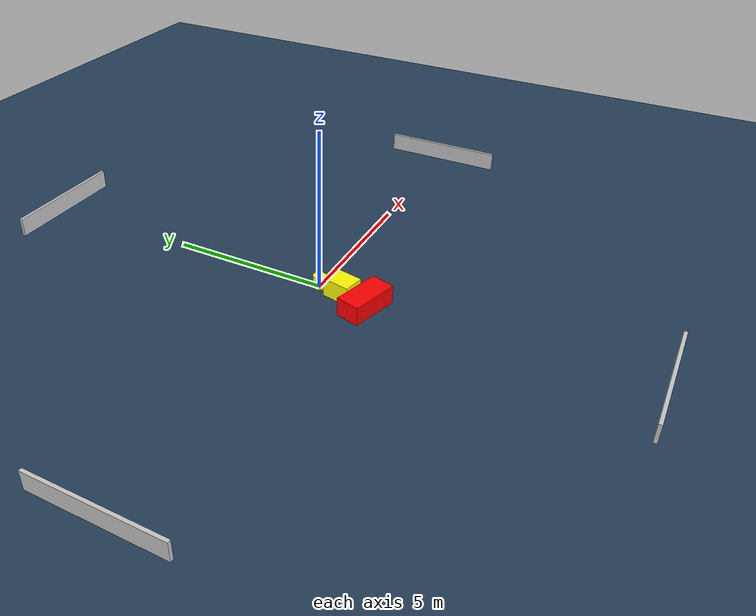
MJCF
<?xml version="1.0" ?>
<mujoco model="generated_environment">
  <option timestep="0.01" integrator="RK4" cone="elliptic"/>
  <default>
    <geom density="1"/>
  </default>
  <asset>
    <texture builtin="gradient" height="3072" name="skybox" rgb1="0.3 0.5 0.7" rgb2="0 0 0" type="skybox" width="512"/>
    <texture builtin="checker" height="300" name="groundplane" rgb1="0.2 0.3 0.4" rgb2="0.1 0.2 0.3" type="2d" width="300"/>
    <material name="groundplane" reflectance="0.2" texrepeat="5 5" texture="groundplane"/>
  </asset>
  <worldbody>
    <light dir="0 0 -1" directional="true" pos="0 0 1.5"/>
    <geom condim="3" friction="0.5 0.005 0.001" material="groundplane" name="floor" pos="0 0 0" size="0 0 0.05" type="plane"/>
    <body name="walls">
      <geom name="wall_1" condim="4" pos="-10.0 0.0 0.3" rgba="0.800000011920929 0.800000011920929 0.800000011920929 1.0" size="0.05 2.0 0.3" type="box"/>
      <geom name="wall_2" condim="4" pos="10.0 0.0 0.3" rgba="0.800000011920929 0.800000011920929 0.800000011920929 1.0" size="0.05 2.0 0.3" type="box"/>
      <geom name="wall_3" condim="4" pos="0.0 -10.0 0.3" rgba="0.800000011920929 0.800000011920929 0.800000011920929 1.0" size="2.0 0.05 0.3" type="box"/>
      <geom name="wall_4" condim="4" pos="0.0 10.0 0.3" rgba="0.800000011920929 0.800000011920929 0.800000011920929 1.0" size="2.0 0.05 0.3" type="box"/>
    </body>
    <body name="robot">
      <joint name="joint_x" type="slide" pos="0 0 0" axis="1 0 0"/>
      <joint name="joint_y" type="slide" pos="0 0 0" axis="0 1 0"/>
      <geom name="robot" type="cylinder" pos="0.0 0.0 0.2" size="0.2 0.2 0.0" mass="5.0" friction="1.0 0.005 0.0001" condim="4" rgba="1.0 1.0 0.0 1.0"/>
    </body>
    <body name="obstacle_1_movable">
      <geom name="obstacle_1_movable" condim="4" pos="-0.10684823374884993 -0.8000358561432513 0.3" euler="0 0 348.36615988634753" friction="0.0 0.005 0.001" rgba="1.0 1.0 0.0 1.0" size="0.332002858520501 0.4359598317833745 0.3" type="box" mass="0.1"/>
      <joint type="free"/>
    </body>
    <body name="obstacle_2_static">
      <geom name="obstacle_2_static" condim="4" pos="-0.388116617780581 -1.686419525100269 0.3" euler="0 0 344.13584926141027" friction="0.0 0.005 0.001" rgba="1.0 0.0 0.0 1.0" size="0.7752262883280119 0.3767014709592513 0.3" type="box"/>
    </body>
  </worldbody>
  <actuator>
    <motor name="actuator_x" joint="joint_x" gear="1" ctrlrange="-1 1"/>
    <motor name="actuator_y" joint="joint_y" gear="1" ctrlrange="-1 1"/>
  </actuator>
</mujoco>
